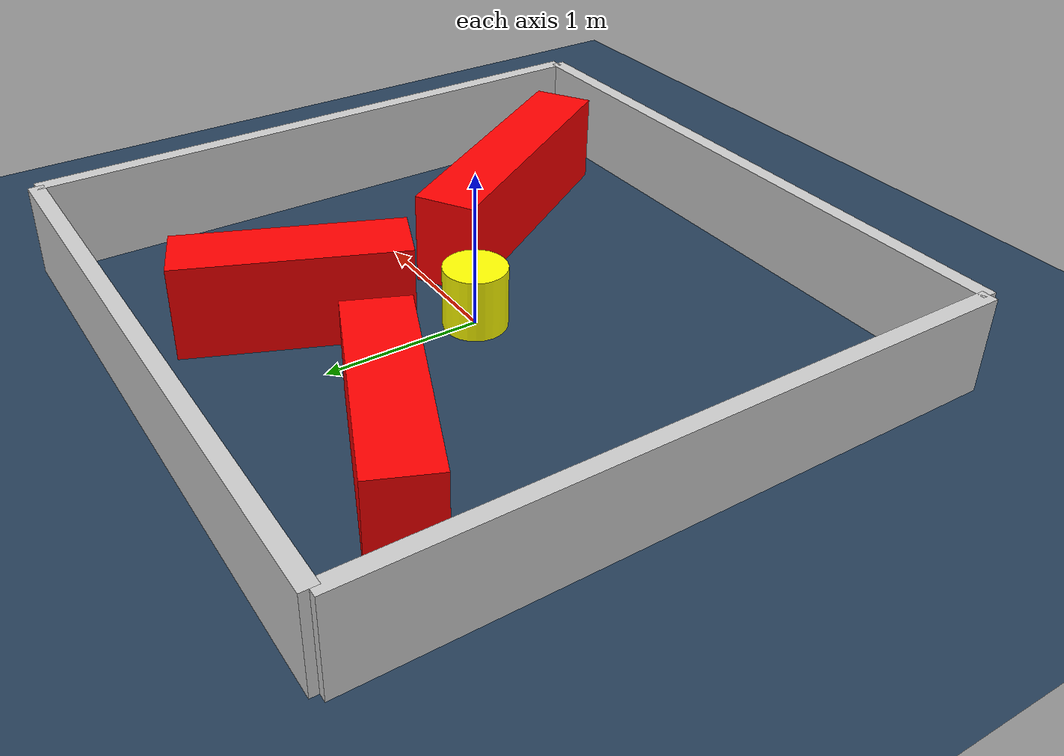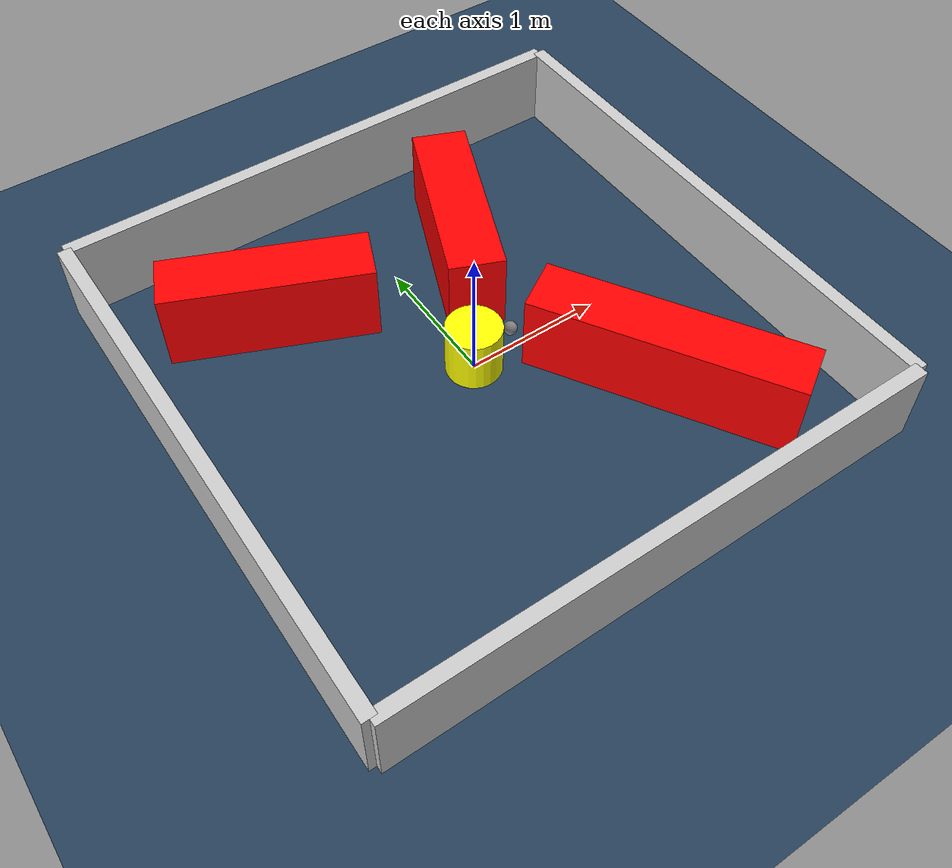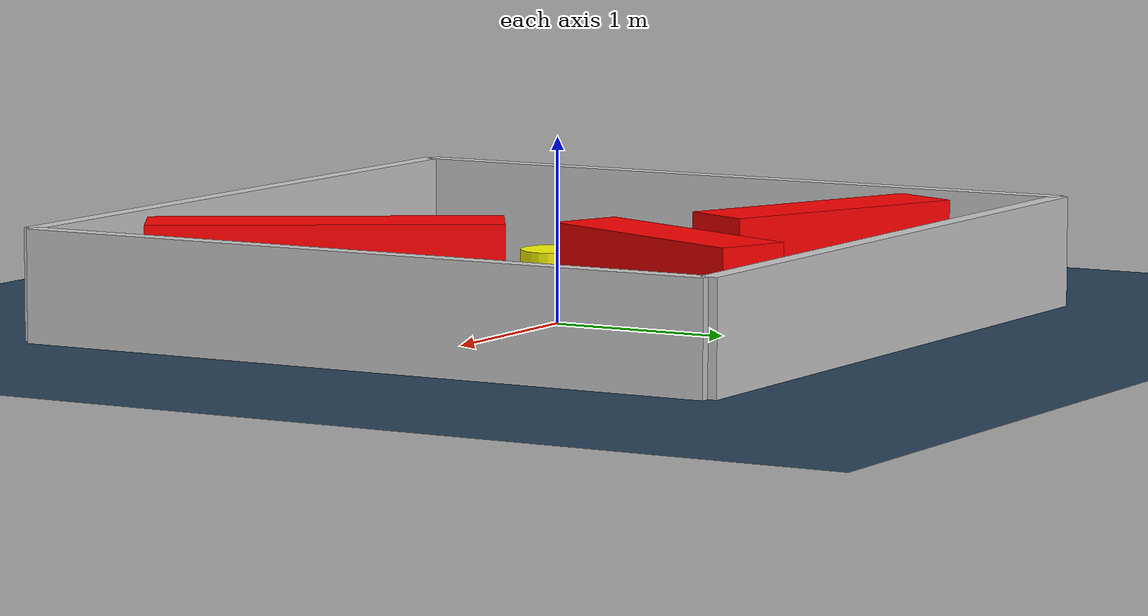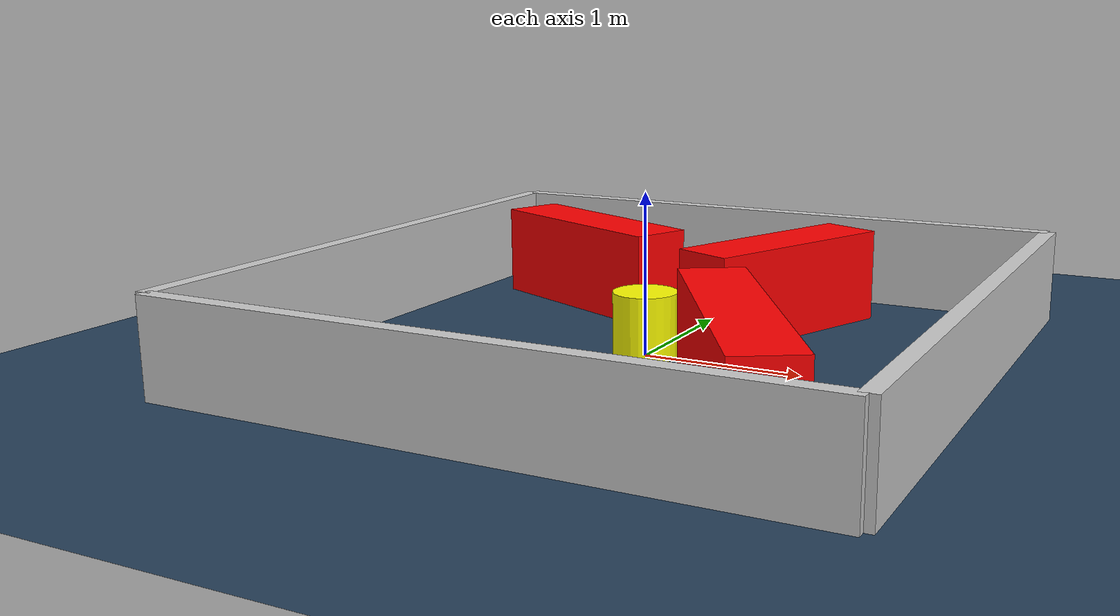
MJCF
<?xml version="1.0" ?>
<mujoco model="generated_environment">
  <option timestep="0.01" integrator="RK4" cone="elliptic"/>
  <default>
    <geom density="1"/>
  </default>
  <asset>
    <texture builtin="gradient" height="3072" rgb1="0.3 0.5 0.7" rgb2="0 0 0" type="skybox" width="512"/>
    <texture builtin="checker" height="300" mark="edge" markrgb="0.8 0.8 0.8" name="groundplane" rgb1="0.2 0.3 0.4" rgb2="0.1 0.2 0.3" type="2d" width="300"/>
    <material name="groundplane" reflectance="0.2" texrepeat="5 5" texture="groundplane" texuniform="true"/>
    <material name="robot" rgba="0.0 1.0 0.0 1"/>
  </asset>
  <worldbody>
    <light dir="0 0 -1" directional="true" pos="0 0 1.5"/>
    <geom condim="4" friction="1.0 0.005 0.001" material="groundplane" name="floor" size="0 0 0.05" type="plane"/>
    <body name="walls">
      <geom name="wall_1" condim="4" pos="-2.0 0.0 0.3" rgba="0.800000011920929 0.800000011920929 0.800000011920929 1.0" size="0.05 2.0 0.3" type="box"/>
      <geom name="wall_2" condim="4" pos="2.0 0.0 0.3" rgba="0.800000011920929 0.800000011920929 0.800000011920929 1.0" size="0.05 2.0 0.3" type="box"/>
      <geom name="wall_3" condim="4" pos="0.0 -2.0 0.3" rgba="0.800000011920929 0.800000011920929 0.800000011920929 1.0" size="2.0 0.05 0.3" type="box"/>
      <geom name="wall_4" condim="4" pos="0.0 2.0 0.3" rgba="0.800000011920929 0.800000011920929 0.800000011920929 1.0" size="2.0 0.05 0.3" type="box"/>
    </body>
    <body name="robot">
      <joint name="joint_x" type="slide" pos="0 0 0" axis="1 0 0"/>
      <joint name="joint_y" type="slide" pos="0 0 0" axis="0 1 0"/>
      <geom name="robot" type="sphere" pos="0.3 0.0 0.2" size="0.05" mass="5." friction="1.0 0.005 0.0001" condim="4" rgba="0.5 0.5 0.5 1.0"/>
      <site name="sensor_ball"/>
    </body>
    <body name="obstacle_movable_1">
      <geom name="obstacle_movable_1" condim="4" pos="0.0 0.0 0.2" euler="0 0 0.0" friction="1.0 0.005 0.001" rgba="1.0 1.0 0.0 1.0" size="0.2 0.2 0.0" type="cylinder" mass="0.1"/>
      <joint type="free"/>
    </body>
    <body name="obstacle_2_static">
      <geom name="obstacle_2_static" condim="4" pos="0.9521137446409864 -0.8603284142898325 0.3" euler="0 0 301.5953462252019" friction="1.0 0.005 0.001" rgba="1 0 0 1" size="0.942123872499006 0.2 0.3" type="box"/>
    </body>
    <body name="obstacle_3_static">
      <geom name="obstacle_3_static" condim="4" pos="0.5015151899365458 0.9443069918486249 0.3" euler="0 0 247.49222734389838" friction="1.0 0.005 0.001" rgba="1 0 0 1" size="0.6993885808458815 0.2 0.3" type="box"/>
    </body>
    <body name="obstacle_4_static">
      <geom name="obstacle_4_static" condim="4" pos="-0.9542455205439987 1.08883906500343 0.3" euler="0 0 336.8985527956689" friction="1.0 0.005 0.001" rgba="1 0 0 1" size="0.7284068319416386 0.2 0.3" type="box"/>
    </body>
  </worldbody>
  <actuator>
    <motor name="actuator_x" joint="joint_x" gear="1" ctrlrange="-1 1"/>
    <motor name="actuator_y" joint="joint_y" gear="1" ctrlrange="-1 1"/>
  </actuator>
</mujoco>
